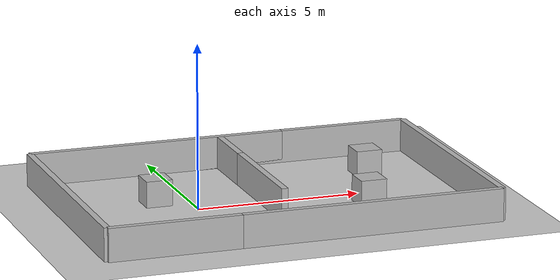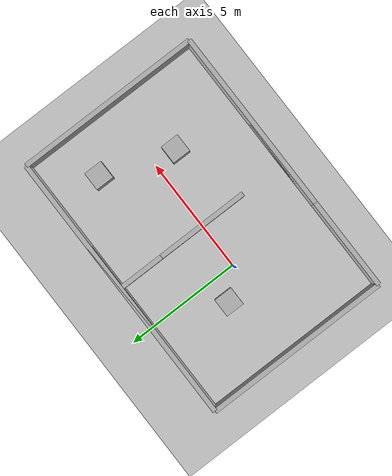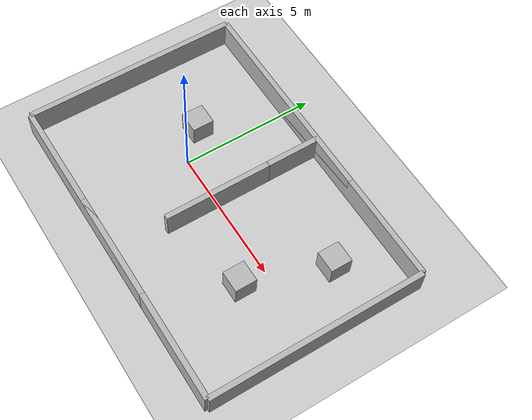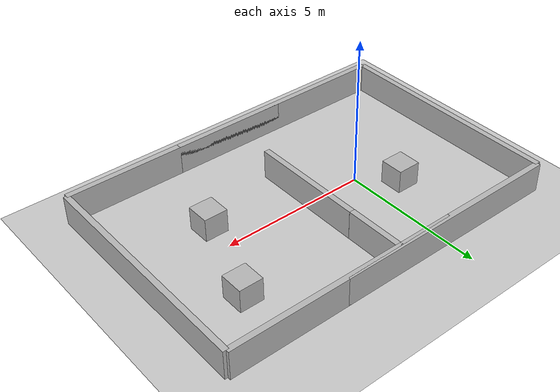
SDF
<?xml version="1.0" ?>
<sdf version="1.6">

<world name="two_room_world">

<!-- Light -->
<include>
  <uri>model://sun</uri>
</include>

<!-- Ground -->
<include>
  <uri>model://ground_plane</uri>
</include>

<!-- ================= ROOM A ================= -->

<!-- Left wall -->
<model name="roomA_wall1">
  <static>true</static>
  <pose>0 4 0.5 0 0 0</pose>
  <link name="wall">
    <collision name="collision">
      <geometry><box><size>8 0.2 1</size></box></geometry>
    </collision>
    <visual name="visual">
      <geometry><box><size>8 0.2 1</size></box></geometry>
    </visual>
  </link>
</model>

<!-- Bottom wall -->
<model name="roomA_wall2">
  <static>true</static>
  <pose>0 -4 0.5 0 0 0</pose>
  <link name="wall">
    <collision name="collision">
      <geometry><box><size>8 0.2 1</size></box></geometry>
    </collision>
    <visual name="visual">
      <geometry><box><size>8 0.2 1</size></box></geometry>
    </visual>
  </link>
</model>

<!-- Back wall -->
<model name="roomA_wall3">
  <static>true</static>
  <pose>-4 0 0.5 0 0 1.57</pose>
  <link name="wall">
    <collision name="collision">
      <geometry><box><size>8 0.2 1</size></box></geometry>
    </collision>
    <visual name="visual">
      <geometry><box><size>8 0.2 1</size></box></geometry>
    </visual>
  </link>
</model>

<!-- Door wall part 1 -->
<model name="roomA_wall4">
  <static>true</static>
  <pose>2 0 0.5 0 0 1.57</pose>
  <link name="wall">
    <collision name="collision">
      <geometry><box><size>4 0.2 1</size></box></geometry>
    </collision>
    <visual name="visual">
      <geometry><box><size>4 0.2 1</size></box></geometry>
    </visual>
  </link>
</model>

<!-- Door wall part 2 -->
<model name="roomA_wall5">
  <static>true</static>
  <pose>2 3 0.5 0 0 1.57</pose>
  <link name="wall">
    <collision name="collision">
      <geometry><box><size>2 0.2 1</size></box></geometry>
    </collision>
    <visual name="visual">
      <geometry><box><size>2 0.2 1</size></box></geometry>
    </visual>
  </link>
</model>

<!-- ================= ROOM B ================= -->

<!-- Right wall -->
<model name="roomB_wall1">
  <static>true</static>
  <pose>8 0 0.5 0 0 1.57</pose>
  <link name="wall">
    <collision name="collision">
      <geometry><box><size>8 0.2 1</size></box></geometry>
    </collision>
    <visual name="visual">
      <geometry><box><size>8 0.2 1</size></box></geometry>
    </visual>
  </link>
</model>

<!-- Top wall -->
<model name="roomB_wall2">
  <static>true</static>
  <pose>4 4 0.5 0 0 0</pose>
  <link name="wall">
    <collision name="collision">
      <geometry><box><size>8 0.2 1</size></box></geometry>
    </collision>
    <visual name="visual">
      <geometry><box><size>8 0.2 1</size></box></geometry>
    </visual>
  </link>
</model>

<!-- Bottom wall -->
<model name="roomB_wall3">
  <static>true</static>
  <pose>4 -4 0.5 0 0 0</pose>
  <link name="wall">
    <collision name="collision">
      <geometry><box><size>8 0.2 1</size></box></geometry>
    </collision>
    <visual name="visual">
      <geometry><box><size>8 0.2 1</size></box></geometry>
    </visual>
  </link>
</model>

<!-- ================= OBSTACLES ================= -->

<!-- Box obstacle -->
<model name="box1">
  <static>true</static>
  <pose>-1 1 0.4 0 0 0</pose>
  <link name="box">
    <collision name="collision">
      <geometry><box><size>0.8 0.8 0.8</size></box></geometry>
    </collision>
    <visual name="visual">
      <geometry><box><size>0.8 0.8 0.8</size></box></geometry>
    </visual>
  </link>
</model>

<model name="box2">
  <static>true</static>
  <pose>5 -1 0.4 0 0 0</pose>
  <link name="box">
    <collision name="collision">
      <geometry><box><size>0.8 0.8 0.8</size></box></geometry>
    </collision>
    <visual name="visual">
      <geometry><box><size>0.8 0.8 0.8</size></box></geometry>
    </visual>
  </link>
</model>

<model name="box3">
  <static>true</static>
  <pose>6 2 0.4 0 0 0</pose>
  <link name="box">
    <collision name="collision">
      <geometry><box><size>0.8 0.8 0.8</size></box></geometry>
    </collision>
    <visual name="visual">
      <geometry><box><size>0.8 0.8 0.8</size></box></geometry>
    </visual>
  </link>
</model>

</world>
</sdf>
